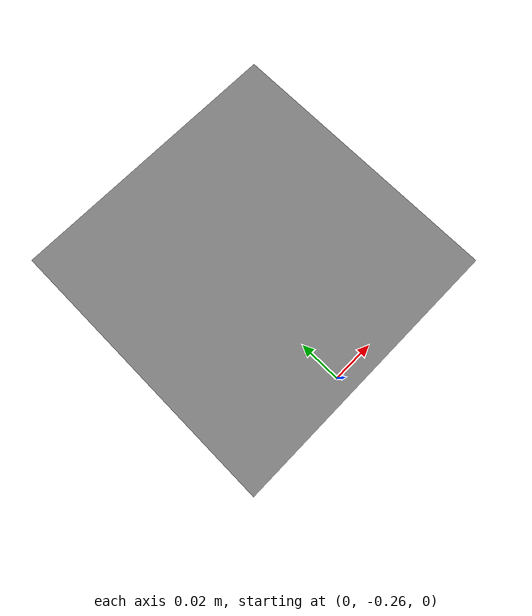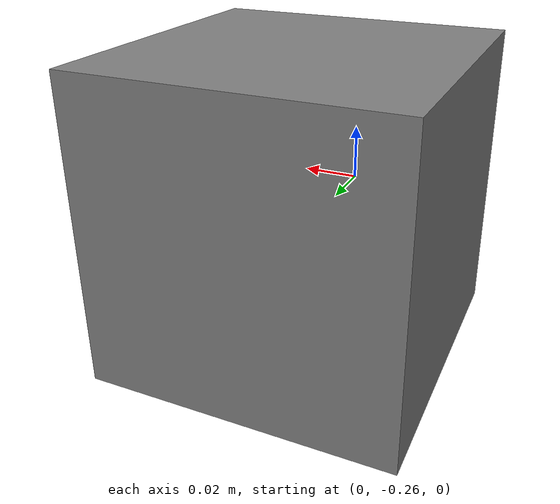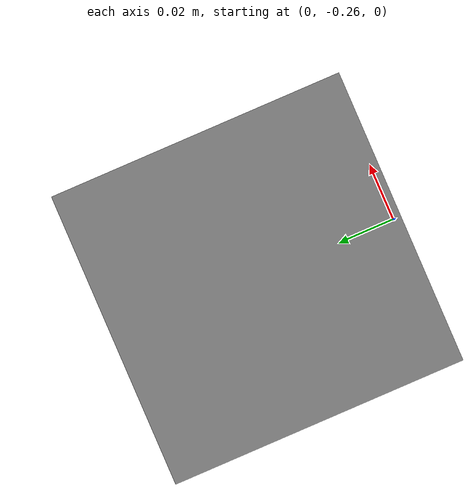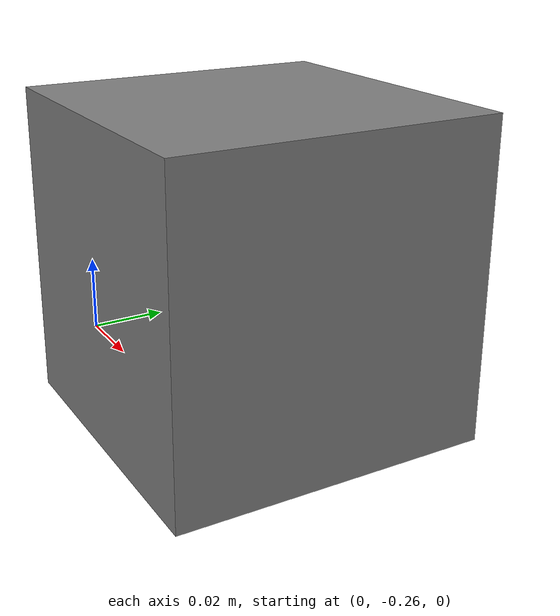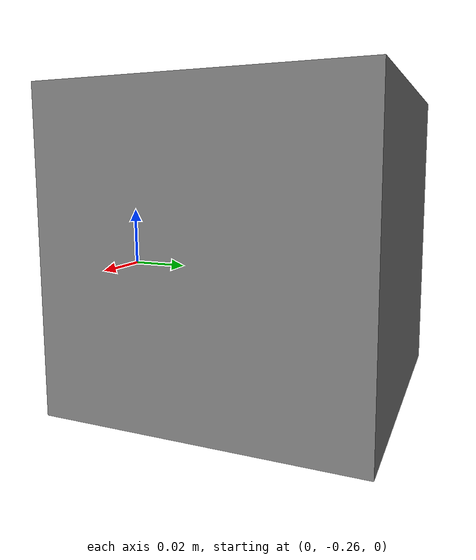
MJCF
<mujoco>
	<worldbody>
		<body name="box" pos="0.0 -0.21 0.01">
			<geom type="box" size="0.05 0.05 0.05"/>
			<!-- Comment out to fix the object -->
		</body>

	</worldbody>

</mujoco>
